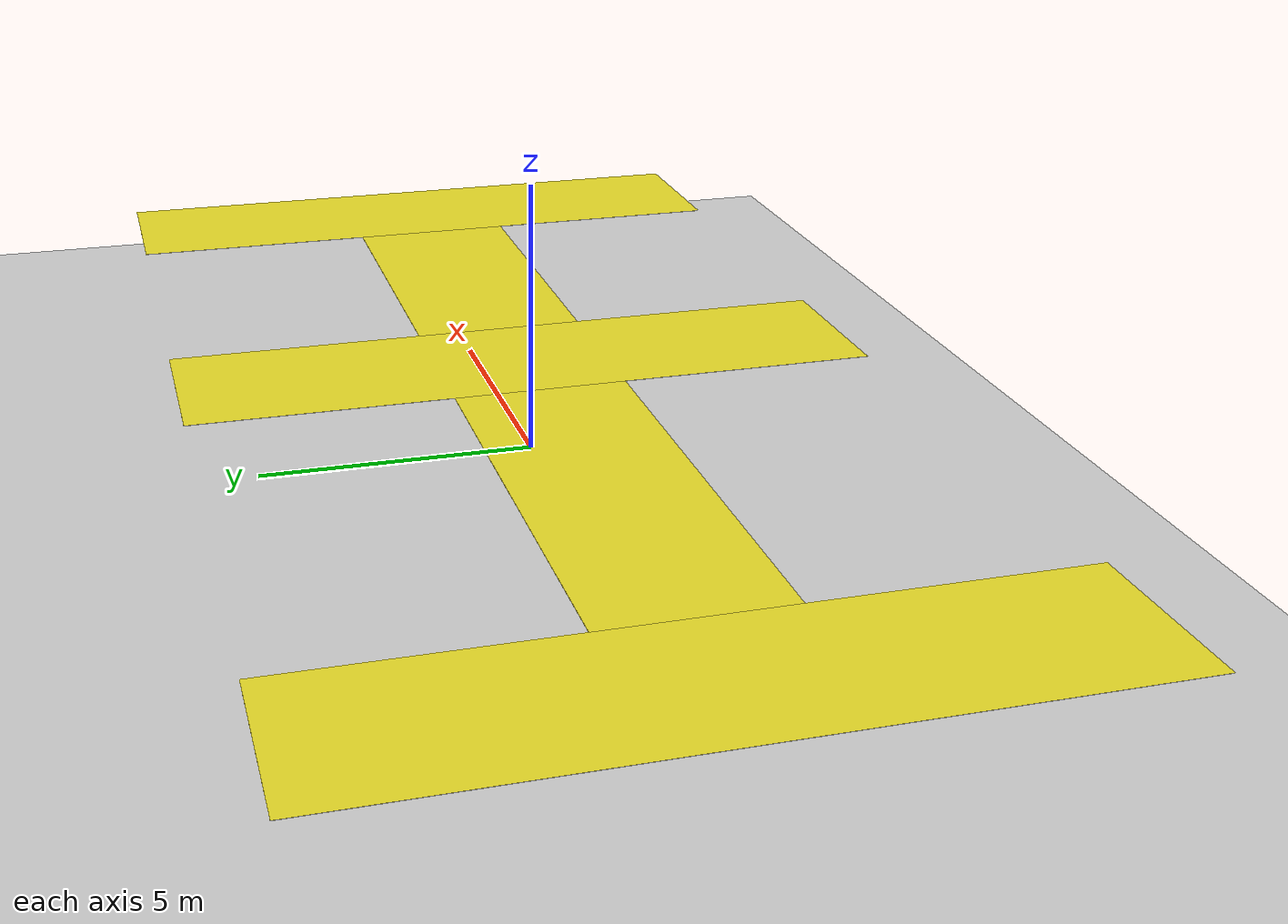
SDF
<sdf version='1.7'>
  <world name='levitation_world'>
    <light name='sun' type='directional'>
      <cast_shadows>1</cast_shadows>
      <pose>0 0 10 0 0 0</pose>
      <diffuse>0.8 0.8 0.8 1</diffuse>
      <specular>0.2 0.2 0.2 1</specular>
      <attenuation>
        <range>1000</range>
        <constant>0.9</constant>
        <linear>0.01</linear>
        <quadratic>0.001</quadratic>
      </attenuation>
      <direction>-0.5 0.1 -0.9</direction>
    </light>

    <gravity>0 0 -9.81</gravity>
    <magnetic_field>6e-06 2.3e-05 -4.2e-05</magnetic_field>
    <atmosphere type='adiabatic'/>

    <physics type='ode'>
      <max_step_size>0.001</max_step_size>
      <real_time_factor>1.0</real_time_factor>
      <real_time_update_rate>1000</real_time_update_rate>
    </physics>

    <scene>
      <ambient>0.4 0.4 0.4 1</ambient>
      <background>0.7 0.7 0.7 1</background>
      <shadows>1</shadows>
    </scene>

    <model name='ground_plane'>
      <static>true</static>
      <link name='link'>
        <collision name='collision'>
          <geometry>
            <plane>
              <normal>0 0 1</normal>
              <size>100 100</size>
            </plane>
          </geometry>
        </collision>
        <visual name='visual'>
          <cast_shadows>false</cast_shadows>
          <geometry>
            <plane>
              <normal>0 0 1</normal>
              <size>100 100</size>
            </plane>
          </geometry>
          <material>
            <script>
              <uri>file://media/materials/scripts/gazebo.material</uri>
              <name>Gazebo/Grey</name>
            </script>
          </material>
        </visual>
      </link>
    </model>

    <model name='copper_plate'>
      <static>true</static>
      <pose>-0.510715 0.350583 2.0 0 0 0</pose>
      <link name='plate_link'>
        <collision name='main_plate_left'>
          <pose>-11.0 0 0 0 0 0</pose>
          <geometry>
            <box>
              <size>3.0 12.0 0.005</size>
            </box>
          </geometry>
        </collision>
        <visual name='main_plate_left'>
          <pose>-11.0 0 0 0 0 0</pose>
          <geometry>
            <box>
              <size>3.0 12.0 0.005</size>
            </box>
          </geometry>
          <material>
            <script>
              <name>Gazebo/Yellow</name>
              <uri>file://media/materials/scripts/gazebo.material</uri>
            </script>
          </material>
        </visual>
        <collision name='main_plate_center'>
          <pose>0 0 0 0 0 0</pose>
          <geometry>
            <box>
              <size>3.0 12.0 0.005</size>
            </box>
          </geometry>
        </collision>
        <visual name='main_plate_center'>
          <pose>0 0 0 0 0 0</pose>
          <geometry>
            <box>
              <size>3.0 12.0 0.005</size>
            </box>
          </geometry>
          <material>
            <script>
              <name>Gazebo/Yellow</name>
              <uri>file://media/materials/scripts/gazebo.material</uri>
            </script>
          </material>
        </visual>
        <collision name='main_plate_right'>
          <pose>9.0 0 0 0 0 0</pose>
          <geometry>
            <box>
              <size>3.0 12.0 0.005</size>
            </box>
          </geometry>
        </collision>
        <visual name='main_plate_right'>
          <pose>9.0 0 0 0 0 0</pose>
          <geometry>
            <box>
              <size>3.0 12.0 0.005</size>
            </box>
          </geometry>
          <material>
            <script>
              <name>Gazebo/Yellow</name>
              <uri>file://media/materials/scripts/gazebo.material</uri>
            </script>
          </material>
        </visual>
        <collision name='connector_left_center'>
          <pose>-5.5 0 0 0 0 0</pose>
          <geometry>
            <box>
              <size>8.0 3.0 0.005</size>
            </box>
          </geometry>
        </collision>
        <visual name='connector_left_center'>
          <pose>-5.5 0 0 0 0 0</pose>
          <geometry>
            <box>
              <size>8.0 3.0 0.005</size>
            </box>
          </geometry>
          <material>
            <script>
              <name>Gazebo/Yellow</name>
              <uri>file://media/materials/scripts/gazebo.material</uri>
            </script>
          </material>
        </visual>
        <collision name='connector_center_right'>
          <pose>4.5 0 0 0 0 0</pose>
          <geometry>
            <box>
              <size>6.0 3.0 0.005</size>
            </box>
          </geometry>
        </collision>
        <visual name='connector_center_right'>
          <pose>4.5 0 0 0 0 0</pose>
          <geometry>
            <box>
              <size>6.0 3.0 0.005</size>
            </box>
          </geometry>
          <material>
            <script>
              <name>Gazebo/Yellow</name>
              <uri>file://media/materials/scripts/gazebo.material</uri>
            </script>
          </material>
        </visual>
      </link>
    </model>

    <gui fullscreen='0'>
      <camera name='user_camera'>
        <pose>1.45 8.80 13.90 0 0.792 -1.6508</pose>
        <view_controller>orbit</view_controller>
        <projection_type>perspective</projection_type>
      </camera>
    </gui>
  </world>
</sdf>
